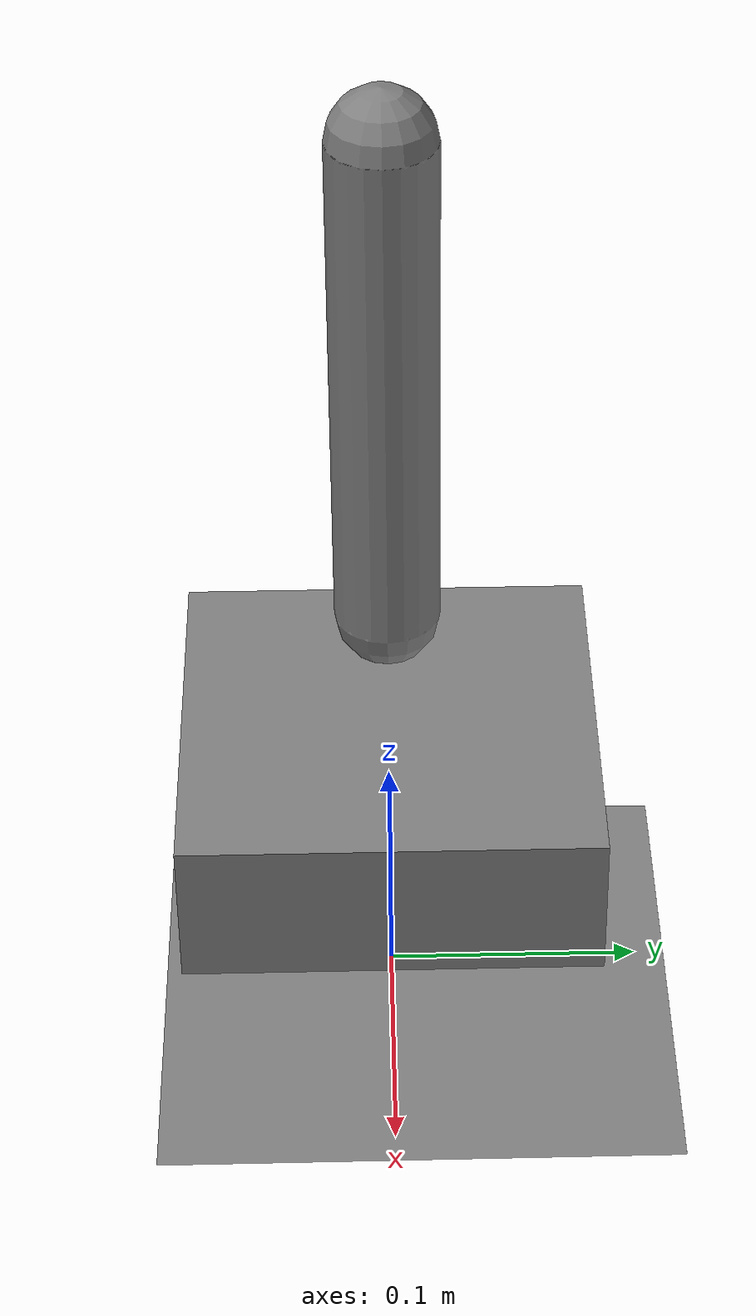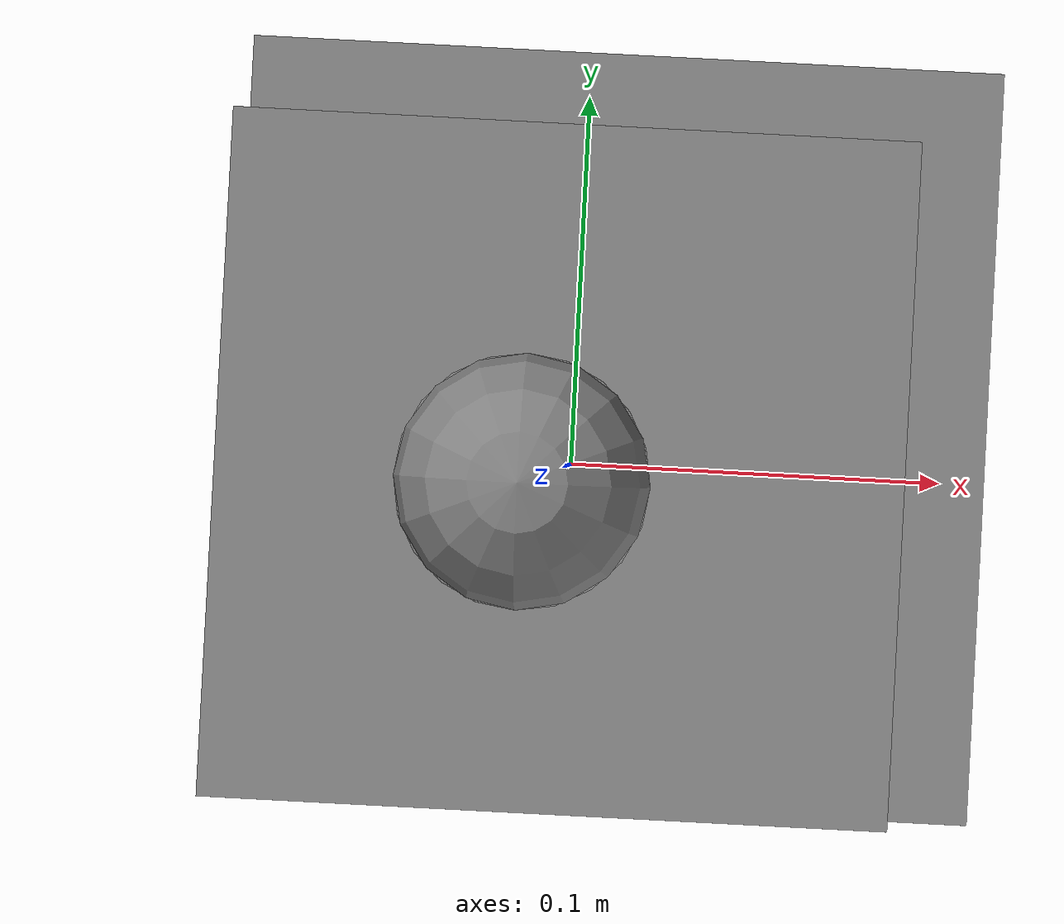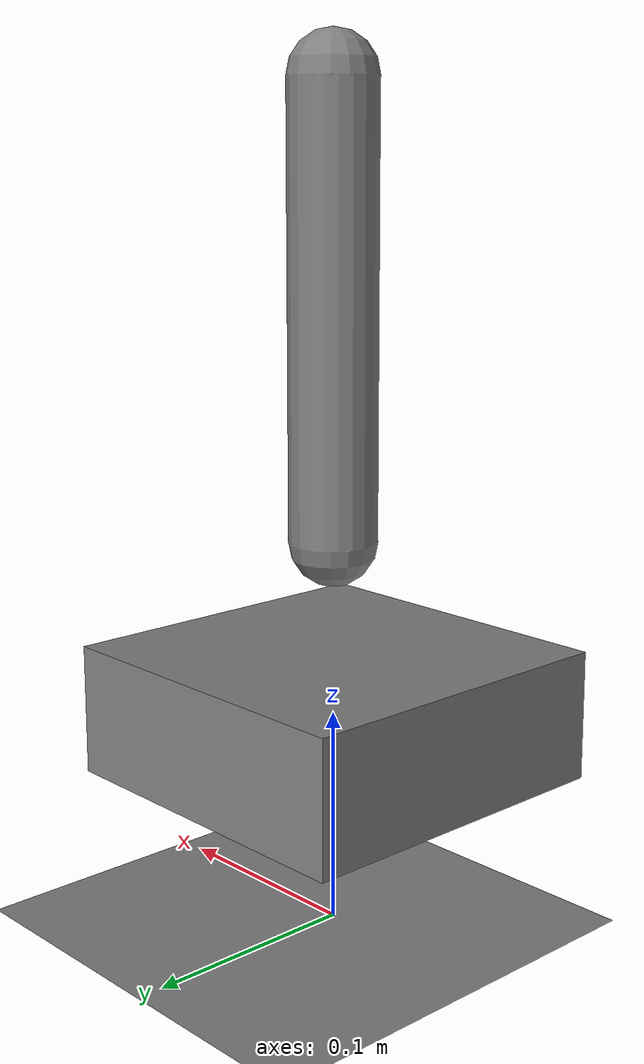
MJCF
<mujoco model="position_servo">
  <compiler angle="radian"/>

  <option timestep="0.002" gravity="0 0 -9.81"/>

  <worldbody>
    <light name="top_light" pos="0 0 2"/>
    <geom name="floor" type="plane" size="1 1 0.01"/>

    <body name="base_body" pos="0 0 0.1">
      <geom name="base_geom" type="box" size="0.08 0.08 0.03" mass="0.2"/>

      <body name="servo_link" pos="0 0 0.08">
        <joint name="servo_hinge" type="hinge" axis="0 1 0" range="-1.57 1.57" damping="0.1"/>
        <geom name="servo_link_geom" type="capsule" fromto="0 0 0 0 0 0.2" size="0.02" mass="0.1"/>
      </body>
    </body>
  </worldbody>

  <actuator>
    <position name="servo_position" joint="servo_hinge" kp="10" ctrlrange="-1.57 1.57" forcerange="-2 2"/>
  </actuator>
</mujoco>
